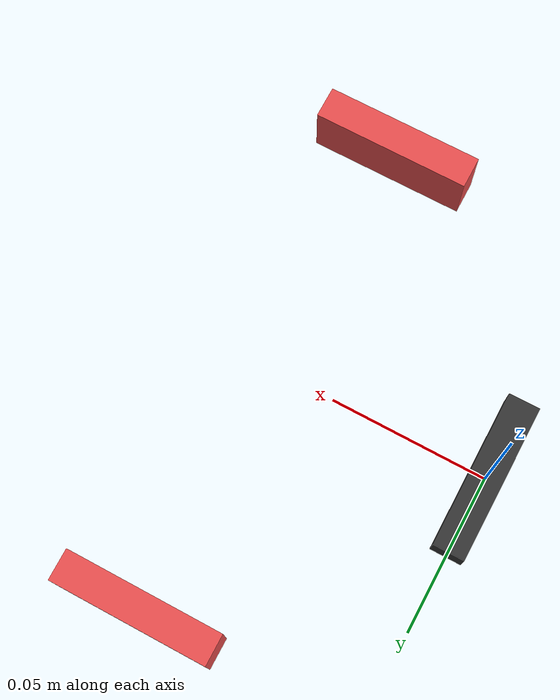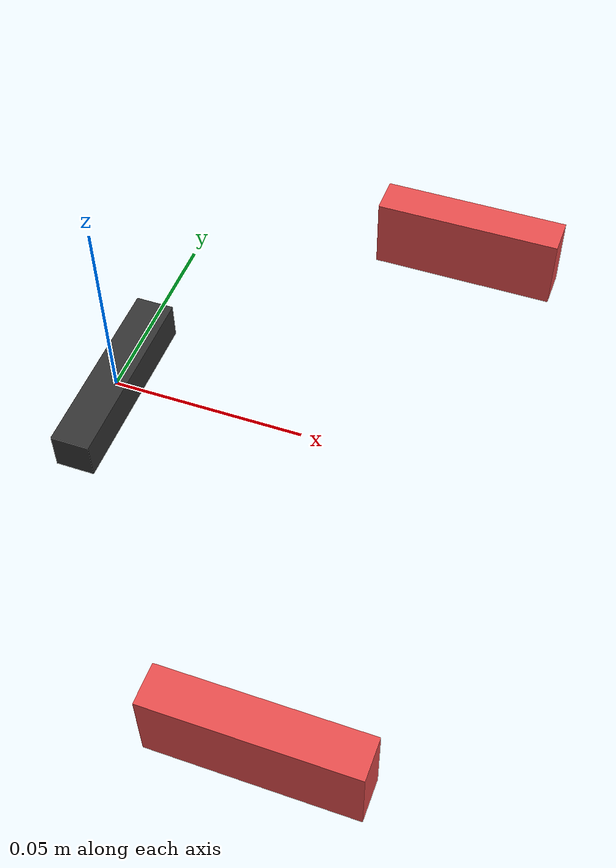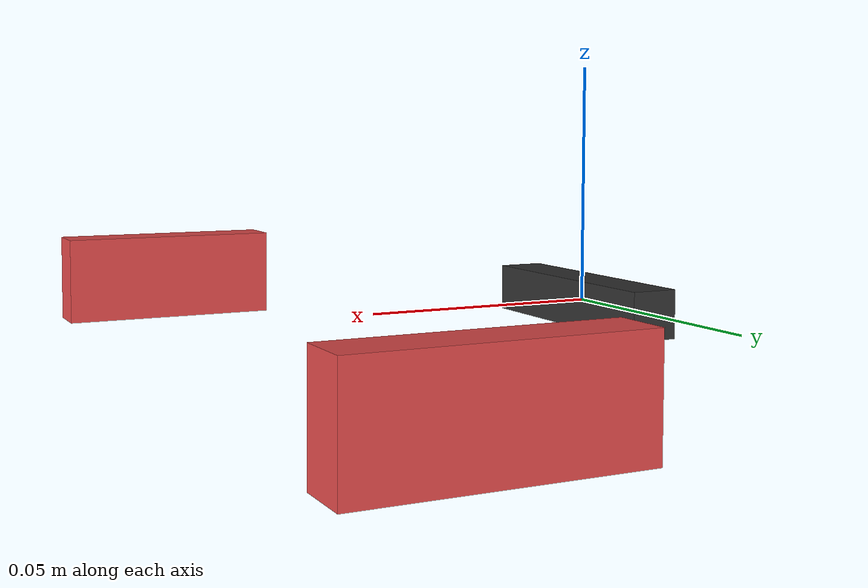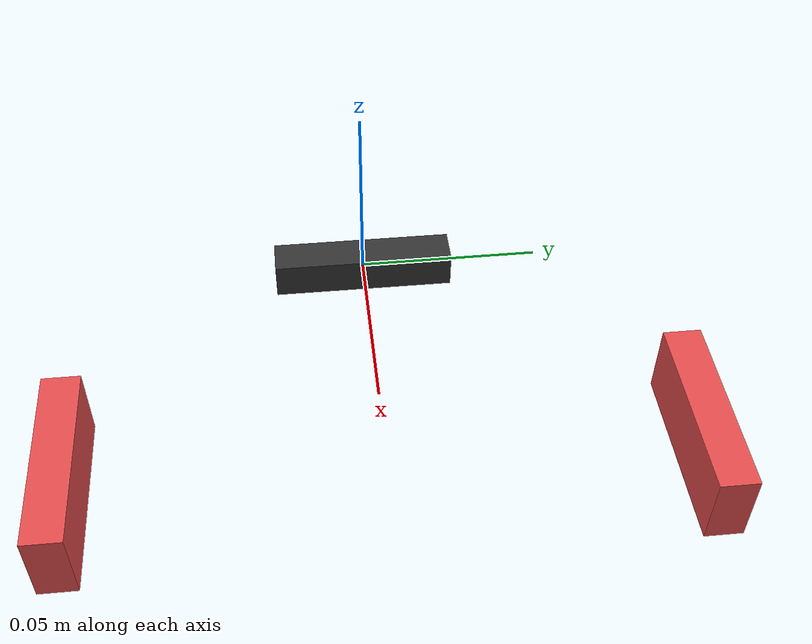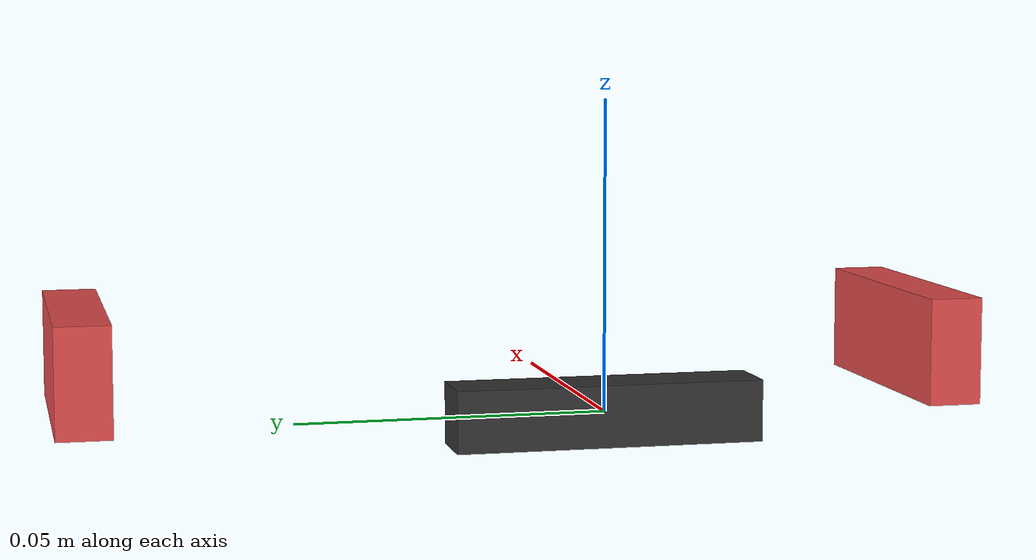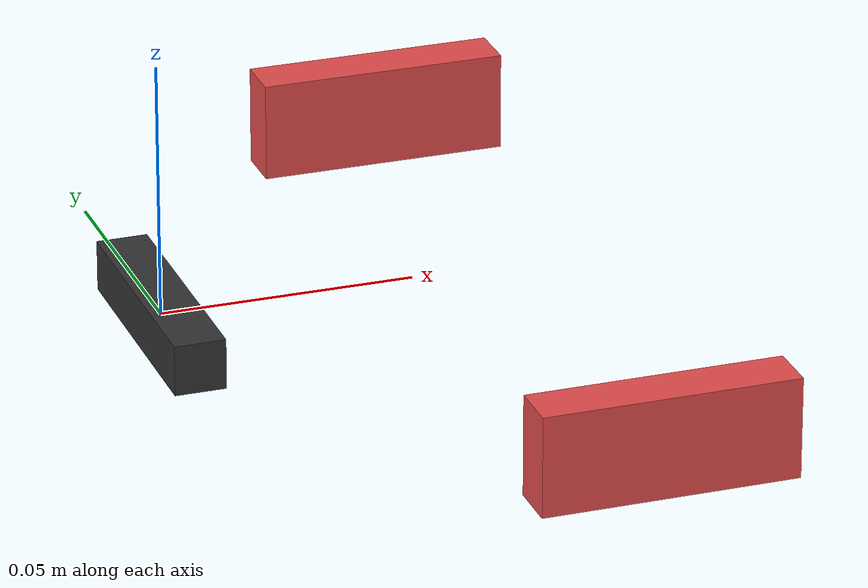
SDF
<?xml version="1.0"?>
<sdf version="1.9">
  <model name="parallel_gripper" canonical_link="base_link">
    <pose>0 0 0 0 0 0</pose>

    <link name="base_link">
      <pose>0 0 0 0 0 0</pose>
      <inertial>
        <mass>0.2</mass>
        <inertia>
          <ixx>0.0000333</ixx>
          <iyy>0.0000667</iyy>
          <izz>0.0000867</izz>
          <ixy>0.0</ixy>
          <iyz>0.0</iyz>
          <ixz>0.0</ixz>
        </inertia>
      </inertial>
      <visual name="base_visual">
        <geometry>
          <box>
            <size>0.01 0.05 0.01</size>
          </box>
        </geometry>
        <material>
          <ambient>0.1 0.1 0.1 1</ambient>
          <diffuse>0.2 0.2 0.2 1</diffuse>
        </material>
      </visual>
    </link>

    <link name="finger_left">
      <pose>0.07 0.08 0 0 0 0</pose>
      <inertial>
        <mass>0.05</mass>
        <inertia>
          <ixx>0.0000021</ixx>
          <iyy>0.0000283</iyy>
          <izz>0.0000271</izz>
          <ixy>0.0</ixy>
          <iyz>0.0</iyz>
          <ixz>0.0</ixz>
        </inertia>
      </inertial>
      <visual name="finger_left_visual">
        <geometry>
          <box>
            <size>0.05 0.01 0.02</size>
          </box>
        </geometry>
        <material>
          <ambient>0.8 0.2 0.2 1</ambient>
          <diffuse>0.9 0.3 0.3 1</diffuse>
        </material>
      </visual>
      <collision name="finger_left_collision">
        <geometry>
          <box>
            <size>0.05 0.01 0.02</size>
          </box>
        </geometry>
      </collision>
    </link>

    <link name="finger_right">
      <pose>0.07 -0.08 0 0 0 0</pose>
      <inertial>
        <mass>0.05</mass>
        <inertia>
          <ixx>0.0000021</ixx>
          <iyy>0.0000283</iyy>
          <izz>0.0000271</izz>
          <ixy>0.0</ixy>
          <iyz>0.0</iyz>
          <ixz>0.0</ixz>
        </inertia>
      </inertial>
      <visual name="finger_right_visual">
        <geometry>
          <box>
            <size>0.05 0.01 0.02</size>
          </box>
        </geometry>
        <material>
          <ambient>0.8 0.2 0.2 1</ambient>
          <diffuse>0.9 0.3 0.3 1</diffuse>
        </material>
      </visual>
      <collision name="finger_right_collision">
        <geometry>
          <box>
            <size>0.05 0.01 0.02</size>
          </box>
        </geometry>
      </collision>
    </link>

    <joint name="finger_left_joint" type="prismatic">
      <parent>base_link</parent>
      <child>finger_left</child>
      <axis>
        <xyz>0 1 0</xyz>
        <limit>
          <lower>-0.1</lower>
          <upper>0.1</upper>
          <effort>50</effort>
          <velocity>0.2</velocity>
        </limit>
        <dynamics>
          <damping>5</damping>
          <friction>1</friction>
        </dynamics>
      </axis>
    </joint>

    <joint name="finger_right_joint" type="prismatic">
      <parent>base_link</parent>
      <child>finger_right</child>
      <axis>
        <xyz>0 -1 0</xyz>
        <limit>
          <lower>-0.1</lower>
          <upper>0.1</upper>
          <effort>50</effort>
          <velocity>0.2</velocity>
        </limit>
        <dynamics>
          <damping>5</damping>
          <friction>1</friction>
        </dynamics>
      </axis>
    </joint>

    <plugin
      filename="libignition-gazebo-joint-position-controller-system.so"
      name="ignition::gazebo::systems::JointPositionController">
      <joint_name>finger_left_joint</joint_name>
      <topic>/gripper/cmd_pos</topic>
      <p_gain>80</p_gain>
      <d_gain>2</d_gain>
    </plugin>

    <plugin
      filename="libignition-gazebo-joint-position-controller-system.so"
      name="ignition::gazebo::systems::JointPositionController">
      <joint_name>finger_right_joint</joint_name>
      <topic>/gripper/cmd_pos</topic>
      <p_gain>80</p_gain>
      <d_gain>2</d_gain>
    </plugin>
  </model>
</sdf>
